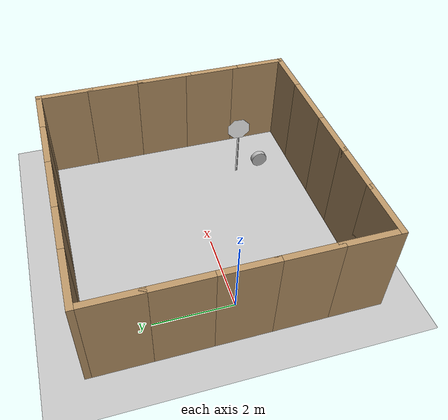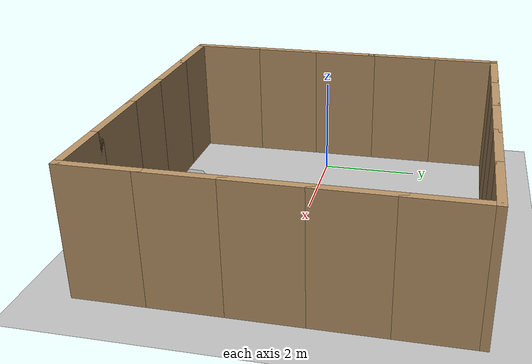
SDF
<sdf version="1.8">
 <world name="default">
  <plugin filename="ignition-gazebo-physics-system" name="ignition::gazebo::systems::Physics"/>
  <plugin filename="ignition-gazebo-user-commands-system" name="ignition::gazebo::systems::UserCommands"/>
  <plugin filename="ignition-gazebo-scene-broadcaster-system" name="ignition::gazebo::systems::SceneBroadcaster"/>
  <plugin filename="ignition-gazebo-sensors-system" name="ignition::gazebo::systems::Sensors">
   <render_engine>ogre2</render_engine>
  </plugin>
  <light name="sun" type="directional">
   <pose>0 0 10 0 0 0</pose>
   <diffuse>1.0 1.0 1.0 1</diffuse>
   <specular>0.4 0.4 0.4 1</specular>
   <attenuation>
    <range>1000</range>
    <constant>0.9</constant>
    <linear>0.01</linear>
    <quadratic>0.001</quadratic>
   </attenuation>
   <direction>-0.5 0.1 -0.9</direction>
  </light>
  <gravity>0 0 -9.8</gravity>
  <magnetic_field>6e-06 2.3e-05 -4.2e-05</magnetic_field>
  <atmosphere type="adiabatic"/>
  <physics name="1ms" type="ode">
   <max_step_size>0.001</max_step_size>
   <real_time_factor>1.0</real_time_factor>
   <real_time_update_rate>1000</real_time_update_rate>
  </physics>
  <scene>
   <ambient>0.75 0.75 0.75 1</ambient>
   <background>0.9 0.9 0.9 1</background>
   <shadows>false</shadows>
  </scene>
  <audio><device>default</device></audio>
  <spherical_coordinates>
   <surface_model>EARTH_WGS84</surface_model>
   <latitude_deg>0</latitude_deg>
   <longitude_deg>0</longitude_deg>
   <elevation>0</elevation>
   <heading_deg>0</heading_deg>
  </spherical_coordinates>
  <model name="ground_plane">
   <static>true</static>
   <link name="link">
    <collision name="collision">
     <geometry><plane><normal>0 0 1</normal><size>100 100</size></plane></geometry>
     <surface>
      <contact><collide_bitmask>65535</collide_bitmask></contact>
      <friction><ode><mu>100</mu><mu2>50</mu2></ode></friction>
     </surface>
    </collision>
    <visual name="visual">
     <cast_shadows>false</cast_shadows>
     <geometry><plane><normal>0 0 1</normal><size>100 100</size></plane></geometry>
     <material>
      <ambient>0.75 0.75 0.75 1</ambient>
      <diffuse>0.75 0.75 0.75 1</diffuse>
      <specular>0.1 0.1 0.1 1</specular>
     </material>
    </visual>
   </link>
  </model>
  <include>
   <name>Stop Sign</name>
   <pose>4.41372 -1.49457 0.007263 0 0 -1.63625</pose>
   <uri>model://stop_sign</uri>
  </include>
  <include><name>car_wheel</name><pose>4.51168 -2.21253 0 0 0 0</pose><uri>model://car_wheel</uri></include>
  <model name="wood_wall2">
   <pose>2.545 0.185 0 0 0 0</pose>
   <link name="Wall_11">
    <collision name="Wall_11_Collision">
     <geometry><box><size>1.5 0.15 2.5</size></box></geometry>
     <pose>0 0 1.25 0 0 0</pose>
    </collision>
    <visual name="Wall_11_Visual">
     <pose>0 0 1.25 0 0 0</pose>
     <geometry><box><size>1.5 0.15 2.5</size></box></geometry>
     <material>
      <ambient>0.72 0.58 0.40 1</ambient>
      <diffuse>0.72 0.58 0.40 1</diffuse>
      <specular>0.08 0.08 0.08 1</specular>
     </material>
     <meta><layer>0</layer></meta>
    </visual>
    <pose>3.375 0 0 0 0 1.5708</pose>
   </link>
   <link name="Wall_12">
    <collision name="Wall_12_Collision">
     <geometry><box><size>1.5 0.15 2.5</size></box></geometry>
     <pose>0 0 1.25 0 0 0</pose>
    </collision>
    <visual name="Wall_12_Visual">
     <pose>0 0 1.25 0 0 0</pose>
     <geometry><box><size>1.5 0.15 2.5</size></box></geometry>
     <material>
      <ambient>0.72 0.58 0.40 1</ambient>
      <diffuse>0.72 0.58 0.40 1</diffuse>
      <specular>0.08 0.08 0.08 1</specular>
     </material>
     <meta><layer>0</layer></meta>
    </visual>
    <pose>3.375 1.35 0 0 0 1.5708</pose>
   </link>
   <link name="Wall_15">
    <collision name="Wall_15_Collision">
     <geometry><box><size>1.5 0.15 2.5</size></box></geometry>
     <pose>0 0 1.25 0 0 0</pose>
    </collision>
    <visual name="Wall_15_Visual">
     <pose>0 0 1.25 0 0 0</pose>
     <geometry><box><size>1.5 0.15 2.5</size></box></geometry>
     <material>
      <ambient>0.72 0.58 0.40 1</ambient>
      <diffuse>0.72 0.58 0.40 1</diffuse>
      <specular>0.08 0.08 0.08 1</specular>
     </material>
     <meta><layer>0</layer></meta>
    </visual>
    <pose>3.375 2.7 0 0 0 1.5708</pose>
   </link>
   <link name="Wall_16">
    <collision name="Wall_16_Collision">
     <geometry><box><size>1.5 0.15 2.5</size></box></geometry>
     <pose>0 0 1.25 0 0 0</pose>
    </collision>
    <visual name="Wall_16_Visual">
     <pose>0 0 1.25 0 0 0</pose>
     <geometry><box><size>1.5 0.15 2.5</size></box></geometry>
     <material>
      <ambient>0.72 0.58 0.40 1</ambient>
      <diffuse>0.72 0.58 0.40 1</diffuse>
      <specular>0.08 0.08 0.08 1</specular>
     </material>
     <meta><layer>0</layer></meta>
    </visual>
    <pose>2.7 3.375 0 0 0 3.14159</pose>
   </link>
   <link name="Wall_17">
    <collision name="Wall_17_Collision">
     <geometry><box><size>1.5 0.15 2.5</size></box></geometry>
     <pose>0 0 1.25 0 0 0</pose>
    </collision>
    <visual name="Wall_17_Visual">
     <pose>0 0 1.25 0 0 0</pose>
     <geometry><box><size>1.5 0.15 2.5</size></box></geometry>
     <material>
      <ambient>0.72 0.58 0.40 1</ambient>
      <diffuse>0.72 0.58 0.40 1</diffuse>
      <specular>0.08 0.08 0.08 1</specular>
     </material>
     <meta><layer>0</layer></meta>
    </visual>
    <pose>1.35 3.375 0 0 0 3.14159</pose>
   </link>
   <link name="Wall_18">
    <collision name="Wall_18_Collision">
     <geometry><box><size>1.5 0.15 2.5</size></box></geometry>
     <pose>0 0 1.25 0 0 0</pose>
    </collision>
    <visual name="Wall_18_Visual">
     <pose>0 0 1.25 0 0 0</pose>
     <geometry><box><size>1.5 0.15 2.5</size></box></geometry>
     <material>
      <ambient>0.72 0.58 0.40 1</ambient>
      <diffuse>0.72 0.58 0.40 1</diffuse>
      <specular>0.08 0.08 0.08 1</specular>
     </material>
     <meta><layer>0</layer></meta>
    </visual>
    <pose>0 3.375 0 0 0 3.14159</pose>
   </link>
   <link name="Wall_19">
    <collision name="Wall_19_Collision">
     <geometry><box><size>1.5 0.15 2.5</size></box></geometry>
     <pose>0 0 1.25 0 0 0</pose>
    </collision>
    <visual name="Wall_19_Visual">
     <pose>0 0 1.25 0 0 0</pose>
     <geometry><box><size>1.5 0.15 2.5</size></box></geometry>
     <material>
      <ambient>0.72 0.58 0.40 1</ambient>
      <diffuse>0.72 0.58 0.40 1</diffuse>
      <specular>0.08 0.08 0.08 1</specular>
     </material>
     <meta><layer>0</layer></meta>
    </visual>
    <pose>-1.35 3.375 0 0 0 3.14159</pose>
   </link>
   <link name="Wall_3">
    <collision name="Wall_3_Collision">
     <geometry><box><size>1.46077 0.15 2.5</size></box></geometry>
     <pose>0 0 1.25 0 0 0</pose>
    </collision>
    <visual name="Wall_3_Visual">
     <pose>0 0 1.25 0 0 0</pose>
     <geometry><box><size>1.46077 0.15 2.5</size></box></geometry>
     <material>
      <ambient>0.72 0.58 0.40 1</ambient>
      <diffuse>0.72 0.58 0.40 1</diffuse>
      <specular>0.08 0.08 0.08 1</specular>
     </material>
     <meta><layer>0</layer></meta>
    </visual>
    <pose>-1.36961 -3.375 0 0 0 0</pose>
   </link>
   <link name="Wall_30">
    <collision name="Wall_30_Collision">
     <geometry><box><size>1.5 0.15 2.5</size></box></geometry>
     <pose>0 0 1.25 0 0 0</pose>
    </collision>
    <visual name="Wall_30_Visual">
     <pose>0 0 1.25 0 0 0</pose>
     <geometry><box><size>1.5 0.15 2.5</size></box></geometry>
     <material>
      <ambient>0.72 0.58 0.40 1</ambient>
      <diffuse>0.72 0.58 0.40 1</diffuse>
      <specular>0.08 0.08 0.08 1</specular>
     </material>
     <meta><layer>0</layer></meta>
    </visual>
    <pose>-2.7 3.375 0 0 0 3.14159</pose>
   </link>
   <link name="Wall_31">
    <collision name="Wall_31_Collision">
     <geometry><box><size>1.5 0.15 2.5</size></box></geometry>
     <pose>0 0 1.25 0 0 0</pose>
    </collision>
    <visual name="Wall_31_Visual">
     <pose>0 0 1.25 0 0 0</pose>
     <geometry><box><size>1.5 0.15 2.5</size></box></geometry>
     <material>
      <ambient>0.72 0.58 0.40 1</ambient>
      <diffuse>0.72 0.58 0.40 1</diffuse>
      <specular>0.08 0.08 0.08 1</specular>
     </material>
     <meta><layer>0</layer></meta>
    </visual>
    <pose>-3.375 2.7 0 0 0 -1.5708</pose>
   </link>
   <link name="Wall_33">
    <collision name="Wall_33_Collision">
     <geometry><box><size>1.5 0.15 2.5</size></box></geometry>
     <pose>0 0 1.25 0 0 0</pose>
    </collision>
    <visual name="Wall_33_Visual">
     <pose>0 0 1.25 0 0 0</pose>
     <geometry><box><size>1.5 0.15 2.5</size></box></geometry>
     <material>
      <ambient>0.72 0.58 0.40 1</ambient>
      <diffuse>0.72 0.58 0.40 1</diffuse>
      <specular>0.08 0.08 0.08 1</specular>
     </material>
     <meta><layer>0</layer></meta>
    </visual>
    <pose>-3.375 1.35 0 0 0 -1.5708</pose>
   </link>
   <link name="Wall_34">
    <collision name="Wall_34_Collision">
     <geometry><box><size>1.5 0.15 2.5</size></box></geometry>
     <pose>0 0 1.25 0 0 0</pose>
    </collision>
    <visual name="Wall_34_Visual">
     <pose>0 0 1.25 0 0 0</pose>
     <geometry><box><size>1.5 0.15 2.5</size></box></geometry>
     <material>
      <ambient>0.72 0.58 0.40 1</ambient>
      <diffuse>0.72 0.58 0.40 1</diffuse>
      <specular>0.08 0.08 0.08 1</specular>
     </material>
     <meta><layer>0</layer></meta>
    </visual>
    <pose>-3.375 0 0 0 0 -1.5708</pose>
   </link>
   <link name="Wall_35">
    <collision name="Wall_35_Collision">
     <geometry><box><size>1.5 0.15 2.5</size></box></geometry>
     <pose>0 0 1.25 0 0 0</pose>
    </collision>
    <visual name="Wall_35_Visual">
     <pose>0 0 1.25 0 0 0</pose>
     <geometry><box><size>1.5 0.15 2.5</size></box></geometry>
     <material>
      <ambient>0.72 0.58 0.40 1</ambient>
      <diffuse>0.72 0.58 0.40 1</diffuse>
      <specular>0.08 0.08 0.08 1</specular>
     </material>
     <meta><layer>0</layer></meta>
    </visual>
    <pose>-3.375 -1.35 0 0 0 -1.5708</pose>
   </link>
   <link name="Wall_37">
    <collision name="Wall_37_Collision">
     <geometry><box><size>1.5 0.15 2.5</size></box></geometry>
     <pose>0 0 1.25 0 0 0</pose>
    </collision>
    <visual name="Wall_37_Visual">
     <pose>0 0 1.25 0 0 0</pose>
     <geometry><box><size>1.5 0.15 2.5</size></box></geometry>
     <material>
      <ambient>0.72 0.58 0.40 1</ambient>
      <diffuse>0.72 0.58 0.40 1</diffuse>
      <specular>0.08 0.08 0.08 1</specular>
     </material>
     <meta><layer>0</layer></meta>
    </visual>
    <pose>-3.375 -2.7 0 0 0 -1.5708</pose>
   </link>
   <link name="Wall_38">
    <collision name="Wall_38_Collision">
     <geometry><box><size>1.5 0.15 2.5</size></box></geometry>
     <pose>0 0 1.25 0 0 0</pose>
    </collision>
    <visual name="Wall_38_Visual">
     <pose>0 0 1.25 0 0 0</pose>
     <geometry><box><size>1.5 0.15 2.5</size></box></geometry>
     <material>
      <ambient>0.72 0.58 0.40 1</ambient>
      <diffuse>0.72 0.58 0.40 1</diffuse>
      <specular>0.08 0.08 0.08 1</specular>
     </material>
     <meta><layer>0</layer></meta>
    </visual>
    <pose>-2.7 -3.375 0 0 0 0</pose>
   </link>
   <link name="Wall_4">
    <collision name="Wall_4_Collision">
     <geometry><box><size>1.5 0.15 2.5</size></box></geometry>
     <pose>0 0 1.25 0 0 0</pose>
    </collision>
    <visual name="Wall_4_Visual">
     <pose>0 0 1.25 0 0 0</pose>
     <geometry><box><size>1.5 0.15 2.5</size></box></geometry>
     <material>
      <ambient>0.72 0.58 0.40 1</ambient>
      <diffuse>0.72 0.58 0.40 1</diffuse>
      <specular>0.08 0.08 0.08 1</specular>
     </material>
     <meta><layer>0</layer></meta>
    </visual>
    <pose>-0.019614 -3.375 0 0 0 0</pose>
   </link>
   <link name="Wall_5">
    <collision name="Wall_5_Collision">
     <geometry><box><size>1.53923 0.15 2.5</size></box></geometry>
     <pose>0 0 1.25 0 0 0</pose>
    </collision>
    <visual name="Wall_5_Visual">
     <pose>0 0 1.25 0 0 0</pose>
     <geometry><box><size>1.53923 0.15 2.5</size></box></geometry>
     <material>
      <ambient>0.72 0.58 0.40 1</ambient>
      <diffuse>0.72 0.58 0.40 1</diffuse>
      <specular>0.08 0.08 0.08 1</specular>
     </material>
     <meta><layer>0</layer></meta>
    </visual>
    <pose>1.33039 -3.375 0 0 0 0</pose>
   </link>
   <link name="Wall_7">
    <collision name="Wall_7_Collision">
     <geometry><box><size>1.5 0.15 2.5</size></box></geometry>
     <pose>0 0 1.25 0 0 0</pose>
    </collision>
    <visual name="Wall_7_Visual">
     <pose>0 0 1.25 0 0 0</pose>
     <geometry><box><size>1.5 0.15 2.5</size></box></geometry>
     <material>
      <ambient>0.72 0.58 0.40 1</ambient>
      <diffuse>0.72 0.58 0.40 1</diffuse>
      <specular>0.08 0.08 0.08 1</specular>
     </material>
     <meta><layer>0</layer></meta>
    </visual>
    <pose>2.7 -3.375 0 0 0 0</pose>
   </link>
   <link name="Wall_8">
    <collision name="Wall_8_Collision">
     <geometry><box><size>1.5 0.15 2.5</size></box></geometry>
     <pose>0 0 1.25 0 0 0</pose>
    </collision>
    <visual name="Wall_8_Visual">
     <pose>0 0 1.25 0 0 0</pose>
     <geometry><box><size>1.5 0.15 2.5</size></box></geometry>
     <material>
      <ambient>0.72 0.58 0.40 1</ambient>
      <diffuse>0.72 0.58 0.40 1</diffuse>
      <specular>0.08 0.08 0.08 1</specular>
     </material>
     <meta><layer>0</layer></meta>
    </visual>
    <pose>3.375 -2.7 0 0 0 1.5708</pose>
   </link>
   <link name="Wall_9">
    <collision name="Wall_9_Collision">
     <geometry><box><size>1.5 0.15 2.5</size></box></geometry>
     <pose>0 0 1.25 0 0 0</pose>
    </collision>
    <visual name="Wall_9_Visual">
     <pose>0 0 1.25 0 0 0</pose>
     <geometry><box><size>1.5 0.15 2.5</size></box></geometry>
     <material>
      <ambient>0.72 0.58 0.40 1</ambient>
      <diffuse>0.72 0.58 0.40 1</diffuse>
      <specular>0.08 0.08 0.08 1</specular>
     </material>
     <meta><layer>0</layer></meta>
    </visual>
    <pose>3.375 -1.35 0 0 0 1.5708</pose>
   </link>
   <static>true</static>
  </model>
 </world>
</sdf>

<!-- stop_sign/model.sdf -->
<sdf version="1.6">
    <model name="Stop Sign">
        <static>true</static>
        <link name="link">
            <collision name="collision">
                <geometry>
                    <mesh>
                        <uri>model://stop_sign/meshes/stop_sign.dae</uri>
                    </mesh>
                </geometry>
            </collision>
            <visual name="visual">
                <geometry>
                    <mesh>
                        <uri>model://stop_sign/meshes/stop_sign.dae</uri>
                    </mesh>
                </geometry>
                <material>
                    <ambient>1 1 1 1</ambient>
                    <diffuse>1 1 1 1</diffuse>
                    <specular>0.05 0.05 0.05 1</specular>
                    <emissive>0 0 0 1</emissive>
                    <pbr>
                        <metal>
                            <albedo_map>model://stop_sign/materials/textures/StopSign_Diffuse.png</albedo_map>
                            <metalness>0.0</metalness>
                            <roughness>0.9</roughness>
                        </metal>
                    </pbr>
                </material>
            </visual>
        </link>
    </model>
</sdf>

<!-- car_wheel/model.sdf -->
<sdf version="1.6">
    <model name="car_wheel">
        <link name="link">
            <pose>0 0 0.21682 0 1.5707 0</pose>
            <inertial>
                <mass>12</mass>
                <inertia>
                    <ixx>0.167005283</ixx>
                    <ixy>0</ixy>
                    <ixz>0</ixz>
                    <iyy>0.167005283</iyy>
                    <iyz>0</iyz>
                    <izz>0.282065474</izz>
                </inertia>
            </inertial>
            <collision name="collision">
                <geometry>
                    <cylinder>
                        <radius>0.21682</radius>
                        <length>0.16116</length>
                    </cylinder>
                </geometry>
                <surface>
                    <friction>
                        <ode>
                            <mu>1.0</mu>
                            <mu2>1.0</mu2>
                            <fdir1>0 0 1</fdir1>
                            <slip1>0.0</slip1>
                            <slip2>0.0</slip2>
                        </ode>
                    </friction>
                    <contact>
                        <ode>
                            <min_depth>0.005</min_depth>
                            <kp>1e8</kp>
                        </ode>
                    </contact>
                </surface>
            </collision>
            <visual name="visual">
                <pose>0 0 -0.08058 0 0 0</pose>
                <geometry>
                    <mesh>
                        <uri>model://car_wheel/meshes/car_wheel.dae</uri>
                    </mesh>
                </geometry>
            </visual>
        </link>
    </model>
</sdf>
